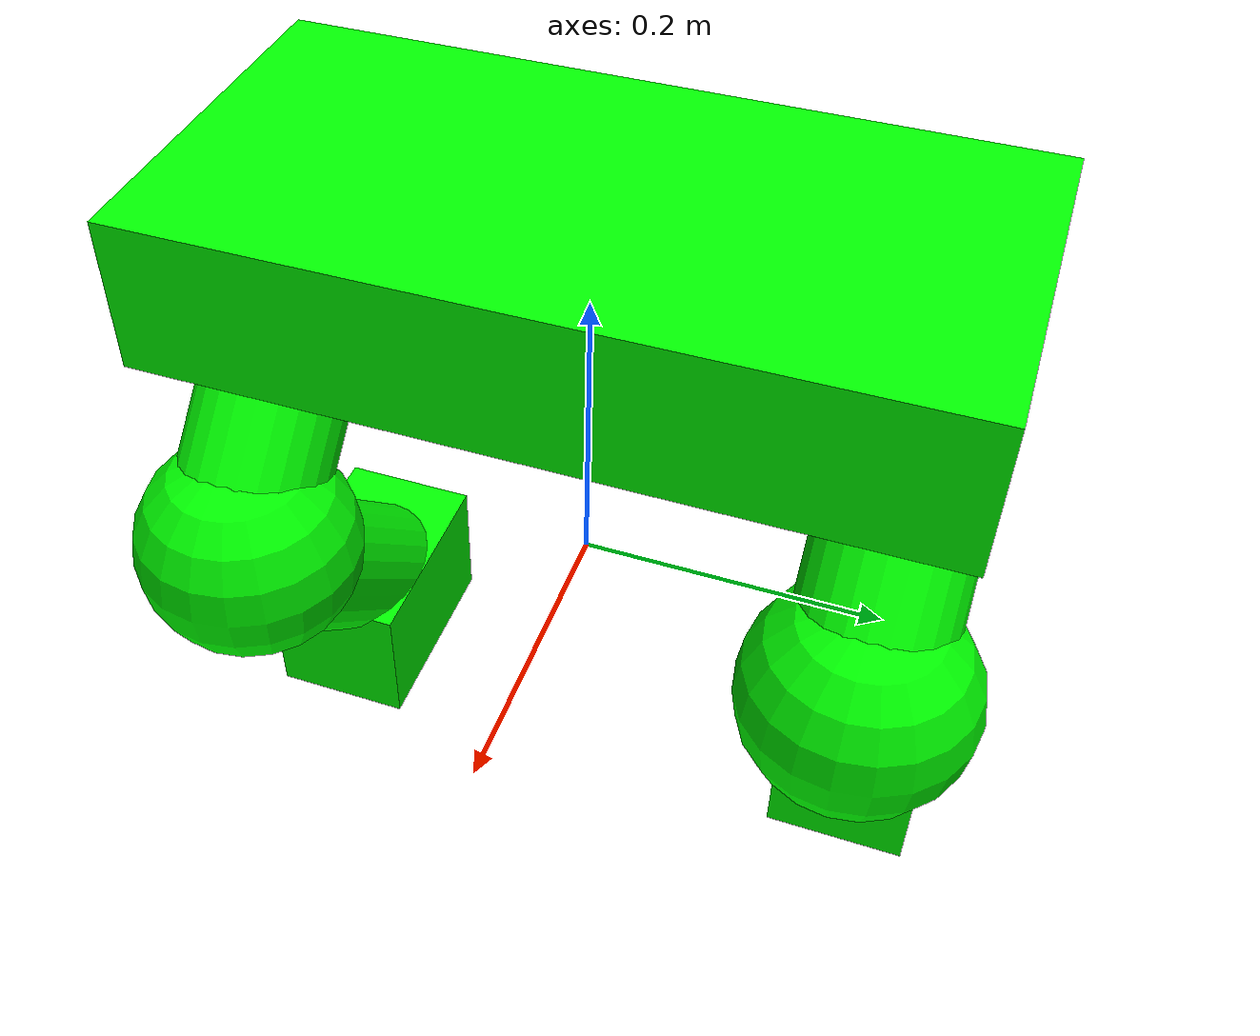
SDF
<?xml version='1.0'?>
<sdf version='1.6'>
  <model name='Humanoid_Robot'>
    <link name='link_0'>
      <pose frame=''>-0.01209 0 0.22008 0 -0 0</pose>
      <inertial>
        <mass>1</mass>
        <inertia>
          <ixx>0.166667</ixx>
          <ixy>0</ixy>
          <ixz>0</ixz>
          <iyy>0.166667</iyy>
          <iyz>0</iyz>
          <izz>0.166667</izz>
        </inertia>
        <pose frame=''>0 0 0 0 -0 0</pose>
      </inertial>
      <gravity>1</gravity>
      <self_collide>0</self_collide>
      <kinematic>0</kinematic>
      <visual name='visual'>
        <pose frame=''>0 0 0 0 -0 0</pose>
        <geometry>
          <box>
            <size>0.25 0.5 0.1</size>
          </box>
        </geometry>
        <material>
          <lighting>1</lighting>
          <script>
            <uri>file://media/materials/scripts/gazebo.material</uri>
            <name>Gazebo/Grey</name>
          </script>
          <shader type='pixel'>
            <normal_map>__default__</normal_map>
          </shader>
          <ambient>0.3 0.3 0.3 1</ambient>
          <diffuse>0 1 0 1</diffuse>
          <specular>0.01 0.01 0.01 1</specular>
          <emissive>0 0 0 1</emissive>
        </material>
        <transparency>0</transparency>
        <cast_shadows>1</cast_shadows>
      </visual>
      <collision name='collision'>
        <laser_retro>0</laser_retro>
        <max_contacts>10</max_contacts>
        <pose frame=''>0 0 0 0 -0 0</pose>
        <geometry>
          <box>
            <size>0.25 0.5 0.1</size>
          </box>
        </geometry>
        <surface>
          <friction>
            <ode>
              <mu>1</mu>
              <mu2>1</mu2>
              <fdir1>0 0 0</fdir1>
              <slip1>0</slip1>
              <slip2>0</slip2>
            </ode>
            <torsional>
              <coefficient>1</coefficient>
              <patch_radius>0</patch_radius>
              <surface_radius>0</surface_radius>
              <use_patch_radius>1</use_patch_radius>
              <ode>
                <slip>0</slip>
              </ode>
            </torsional>
          </friction>
          <bounce>
            <restitution_coefficient>0</restitution_coefficient>
            <threshold>1e+06</threshold>
          </bounce>
          <contact>
            <collide_without_contact>0</collide_without_contact>
            <collide_without_contact_bitmask>1</collide_without_contact_bitmask>
            <collide_bitmask>1</collide_bitmask>
            <ode>
              <soft_cfm>0</soft_cfm>
              <soft_erp>0.2</soft_erp>
              <kp>1e+13</kp>
              <kd>1</kd>
              <max_vel>0.01</max_vel>
              <min_depth>0</min_depth>
            </ode>
            <bullet>
              <split_impulse>1</split_impulse>
              <split_impulse_penetration_threshold>-0.01</split_impulse_penetration_threshold>
              <soft_cfm>0</soft_cfm>
              <soft_erp>0.2</soft_erp>
              <kp>1e+13</kp>
              <kd>1</kd>
            </bullet>
          </contact>
        </surface>
      </collision>
    </link>
    <link name='link_4'>
      <pose frame=''>-0.002743 -0.2 0.14508 0 -0.78535 0</pose>
      <inertial>
        <mass>1</mass>
        <inertia>
          <ixx>0.145833</ixx>
          <ixy>0</ixy>
          <ixz>0</ixz>
          <iyy>0.145833</iyy>
          <iyz>0</iyz>
          <izz>0.125</izz>
        </inertia>
        <pose frame=''>0 0 0 0 -0 0</pose>
      </inertial>
      <gravity>1</gravity>
      <self_collide>0</self_collide>
      <kinematic>0</kinematic>
      <visual name='visual'>
        <pose frame=''>0 0 0 0 -0 0</pose>
        <geometry>
          <cylinder>
            <radius>0.05</radius>
            <length>0.25</length>
          </cylinder>
        </geometry>
        <material>
          <lighting>1</lighting>
          <script>
            <uri>file://media/materials/scripts/gazebo.material</uri>
            <name>Gazebo/Grey</name>
          </script>
          <shader type='pixel'>
            <normal_map>__default__</normal_map>
          </shader>
          <ambient>0 1 0 1</ambient>
          <diffuse>0.7 0.7 0.7 1</diffuse>
          <specular>0.01 0.01 0.01 1</specular>
          <emissive>0 0 0 1</emissive>
        </material>
        <transparency>0</transparency>
        <cast_shadows>1</cast_shadows>
      </visual>
      <collision name='collision'>
        <laser_retro>0</laser_retro>
        <max_contacts>10</max_contacts>
        <pose frame=''>0 0 0 0 -0 0</pose>
        <geometry>
          <cylinder>
            <radius>0.05</radius>
            <length>0.25</length>
          </cylinder>
        </geometry>
        <surface>
          <friction>
            <ode>
              <mu>1</mu>
              <mu2>1</mu2>
              <fdir1>0 0 0</fdir1>
              <slip1>0</slip1>
              <slip2>0</slip2>
            </ode>
            <torsional>
              <coefficient>1</coefficient>
              <patch_radius>0</patch_radius>
              <surface_radius>0</surface_radius>
              <use_patch_radius>1</use_patch_radius>
              <ode>
                <slip>0</slip>
              </ode>
            </torsional>
          </friction>
          <bounce>
            <restitution_coefficient>0</restitution_coefficient>
            <threshold>1e+06</threshold>
          </bounce>
          <contact>
            <collide_without_contact>0</collide_without_contact>
            <collide_without_contact_bitmask>1</collide_without_contact_bitmask>
            <collide_bitmask>1</collide_bitmask>
            <ode>
              <soft_cfm>0</soft_cfm>
              <soft_erp>0.2</soft_erp>
              <kp>1e+13</kp>
              <kd>1</kd>
              <max_vel>0.01</max_vel>
              <min_depth>0</min_depth>
            </ode>
            <bullet>
              <split_impulse>1</split_impulse>
              <split_impulse_penetration_threshold>-0.01</split_impulse_penetration_threshold>
              <soft_cfm>0</soft_cfm>
              <soft_erp>0.2</soft_erp>
              <kp>1e+13</kp>
              <kd>1</kd>
            </bullet>
          </contact>
        </surface>
      </collision>
    </link>
    <link name='link_4_clone'>
      <pose frame=''>-0.013349 0.2 0.14508 0 -0.78535 0</pose>
      <inertial>
        <mass>1</mass>
        <inertia>
          <ixx>0.145833</ixx>
          <ixy>0</ixy>
          <ixz>0</ixz>
          <iyy>0.145833</iyy>
          <iyz>0</iyz>
          <izz>0.125</izz>
        </inertia>
        <pose frame=''>0 0 0 0 -0 0</pose>
      </inertial>
      <self_collide>0</self_collide>
      <kinematic>0</kinematic>
      <gravity>1</gravity>
      <visual name='visual'>
        <pose frame=''>0 0 0 0 -0 0</pose>
        <geometry>
          <cylinder>
            <radius>0.05</radius>
            <length>0.25</length>
          </cylinder>
        </geometry>
        <material>
          <lighting>1</lighting>
          <script>
            <uri>file://media/materials/scripts/gazebo.material</uri>
            <name>Gazebo/Grey</name>
          </script>
          <shader type='pixel'>
            <normal_map>__default__</normal_map>
          </shader>
          <ambient>0 1 0 1</ambient>
          <diffuse>0.7 0.7 0.7 1</diffuse>
          <specular>0.01 0.01 0.01 1</specular>
          <emissive>0 0 0 1</emissive>
        </material>
        <transparency>0</transparency>
        <cast_shadows>1</cast_shadows>
      </visual>
      <collision name='collision'>
        <laser_retro>0</laser_retro>
        <max_contacts>10</max_contacts>
        <pose frame=''>0 0 0 0 -0 0</pose>
        <geometry>
          <cylinder>
            <radius>0.05</radius>
            <length>0.25</length>
          </cylinder>
        </geometry>
        <surface>
          <friction>
            <ode>
              <mu>1</mu>
              <mu2>1</mu2>
              <fdir1>0 0 0</fdir1>
              <slip1>0</slip1>
              <slip2>0</slip2>
            </ode>
            <torsional>
              <coefficient>1</coefficient>
              <patch_radius>0</patch_radius>
              <surface_radius>0</surface_radius>
              <use_patch_radius>1</use_patch_radius>
              <ode>
                <slip>0</slip>
              </ode>
            </torsional>
          </friction>
          <bounce>
            <restitution_coefficient>0</restitution_coefficient>
            <threshold>1e+06</threshold>
          </bounce>
          <contact>
            <collide_without_contact>0</collide_without_contact>
            <collide_without_contact_bitmask>1</collide_without_contact_bitmask>
            <collide_bitmask>1</collide_bitmask>
            <ode>
              <soft_cfm>0</soft_cfm>
              <soft_erp>0.2</soft_erp>
              <kp>1e+13</kp>
              <kd>1</kd>
              <max_vel>0.01</max_vel>
              <min_depth>0</min_depth>
            </ode>
            <bullet>
              <split_impulse>1</split_impulse>
              <split_impulse_penetration_threshold>-0.01</split_impulse_penetration_threshold>
              <soft_cfm>0</soft_cfm>
              <soft_erp>0.2</soft_erp>
              <kp>1e+13</kp>
              <kd>1</kd>
            </bullet>
          </contact>
        </surface>
      </collision>
    </link>
    <link name='link_4_clone_0'>
      <pose frame=''>-0.013349 -0.2 -0.102413 0 0.78535 0</pose>
      <inertial>
        <mass>1</mass>
        <inertia>
          <ixx>0.145833</ixx>
          <ixy>0</ixy>
          <ixz>0</ixz>
          <iyy>0.145833</iyy>
          <iyz>0</iyz>
          <izz>0.125</izz>
        </inertia>
        <pose frame=''>0 0 0 0 -0 0</pose>
      </inertial>
      <self_collide>0</self_collide>
      <kinematic>0</kinematic>
      <gravity>1</gravity>
      <visual name='visual'>
        <pose frame=''>0 0 0 0 -0 0</pose>
        <geometry>
          <cylinder>
            <radius>0.05</radius>
            <length>0.25</length>
          </cylinder>
        </geometry>
        <material>
          <lighting>1</lighting>
          <script>
            <uri>file://media/materials/scripts/gazebo.material</uri>
            <name>Gazebo/Grey</name>
          </script>
          <shader type='pixel'>
            <normal_map>__default__</normal_map>
          </shader>
          <ambient>0 1 0 1</ambient>
          <diffuse>0.7 0.7 0.7 1</diffuse>
          <specular>0.01 0.01 0.01 1</specular>
          <emissive>0 0 0 1</emissive>
        </material>
        <transparency>0</transparency>
        <cast_shadows>1</cast_shadows>
      </visual>
      <collision name='collision'>
        <laser_retro>0</laser_retro>
        <max_contacts>10</max_contacts>
        <pose frame=''>0 0 0 0 -0 0</pose>
        <geometry>
          <cylinder>
            <radius>0.05</radius>
            <length>0.25</length>
          </cylinder>
        </geometry>
        <surface>
          <friction>
            <ode>
              <mu>1</mu>
              <mu2>1</mu2>
              <fdir1>0 0 0</fdir1>
              <slip1>0</slip1>
              <slip2>0</slip2>
            </ode>
            <torsional>
              <coefficient>1</coefficient>
              <patch_radius>0</patch_radius>
              <surface_radius>0</surface_radius>
              <use_patch_radius>1</use_patch_radius>
              <ode>
                <slip>0</slip>
              </ode>
            </torsional>
          </friction>
          <bounce>
            <restitution_coefficient>0</restitution_coefficient>
            <threshold>1e+06</threshold>
          </bounce>
          <contact>
            <collide_without_contact>0</collide_without_contact>
            <collide_without_contact_bitmask>1</collide_without_contact_bitmask>
            <collide_bitmask>1</collide_bitmask>
            <ode>
              <soft_cfm>0</soft_cfm>
              <soft_erp>0.2</soft_erp>
              <kp>1e+13</kp>
              <kd>1</kd>
              <max_vel>0.01</max_vel>
              <min_depth>0</min_depth>
            </ode>
            <bullet>
              <split_impulse>1</split_impulse>
              <split_impulse_penetration_threshold>-0.01</split_impulse_penetration_threshold>
              <soft_cfm>0</soft_cfm>
              <soft_erp>0.2</soft_erp>
              <kp>1e+13</kp>
              <kd>1</kd>
            </bullet>
          </contact>
        </surface>
      </collision>
    </link>
    <link name='link_4_clone_1'>
      <pose frame=''>-0.013349 0.2 -0.102413 0 0.78535 0</pose>
      <inertial>
        <mass>1</mass>
        <inertia>
          <ixx>0.145833</ixx>
          <ixy>0</ixy>
          <ixz>0</ixz>
          <iyy>0.145833</iyy>
          <iyz>0</iyz>
          <izz>0.125</izz>
        </inertia>
        <pose frame=''>0 0 0 0 -0 0</pose>
      </inertial>
      <self_collide>0</self_collide>
      <kinematic>0</kinematic>
      <gravity>1</gravity>
      <visual name='visual'>
        <pose frame=''>0 0 0 0 -0 0</pose>
        <geometry>
          <cylinder>
            <radius>0.05</radius>
            <length>0.25</length>
          </cylinder>
        </geometry>
        <material>
          <lighting>1</lighting>
          <script>
            <uri>file://media/materials/scripts/gazebo.material</uri>
            <name>Gazebo/Grey</name>
          </script>
          <shader type='pixel'>
            <normal_map>__default__</normal_map>
          </shader>
          <ambient>0 1 0 1</ambient>
          <diffuse>0.7 0.7 0.7 1</diffuse>
          <specular>0.01 0.01 0.01 1</specular>
          <emissive>0 0 0 1</emissive>
        </material>
        <transparency>0</transparency>
        <cast_shadows>1</cast_shadows>
      </visual>
      <collision name='collision'>
        <laser_retro>0</laser_retro>
        <max_contacts>10</max_contacts>
        <pose frame=''>0 0 0 0 -0 0</pose>
        <geometry>
          <cylinder>
            <radius>0.05</radius>
            <length>0.25</length>
          </cylinder>
        </geometry>
        <surface>
          <friction>
            <ode>
              <mu>1</mu>
              <mu2>1</mu2>
              <fdir1>0 0 0</fdir1>
              <slip1>0</slip1>
              <slip2>0</slip2>
            </ode>
            <torsional>
              <coefficient>1</coefficient>
              <patch_radius>0</patch_radius>
              <surface_radius>0</surface_radius>
              <use_patch_radius>1</use_patch_radius>
              <ode>
                <slip>0</slip>
              </ode>
            </torsional>
          </friction>
          <bounce>
            <restitution_coefficient>0</restitution_coefficient>
            <threshold>1e+06</threshold>
          </bounce>
          <contact>
            <collide_without_contact>0</collide_without_contact>
            <collide_without_contact_bitmask>1</collide_without_contact_bitmask>
            <collide_bitmask>1</collide_bitmask>
            <ode>
              <soft_cfm>0</soft_cfm>
              <soft_erp>0.2</soft_erp>
              <kp>1e+13</kp>
              <kd>1</kd>
              <max_vel>0.01</max_vel>
              <min_depth>0</min_depth>
            </ode>
            <bullet>
              <split_impulse>1</split_impulse>
              <split_impulse_penetration_threshold>-0.01</split_impulse_penetration_threshold>
              <soft_cfm>0</soft_cfm>
              <soft_erp>0.2</soft_erp>
              <kp>1e+13</kp>
              <kd>1</kd>
            </bullet>
          </contact>
        </surface>
      </collision>
    </link>
    <link name='link_5_clone'>
      <pose frame=''>0.094832 -0.2 0.023453 0 -0 0</pose>
      <inertial>
        <mass>1</mass>
        <inertia>
          <ixx>0.1</ixx>
          <ixy>0</ixy>
          <ixz>0</ixz>
          <iyy>0.1</iyy>
          <iyz>0</iyz>
          <izz>0.1</izz>
        </inertia>
        <pose frame=''>0 0 0 0 -0 0</pose>
      </inertial>
      <self_collide>0</self_collide>
      <kinematic>0</kinematic>
      <gravity>1</gravity>
      <visual name='visual'>
        <pose frame=''>0 0 0 0 -0 0</pose>
        <geometry>
          <sphere>
            <radius>0.075</radius>
          </sphere>
        </geometry>
        <material>
          <lighting>1</lighting>
          <script>
            <uri>file://media/materials/scripts/gazebo.material</uri>
            <name>Gazebo/Grey</name>
          </script>
          <shader type='pixel'>
            <normal_map>__default__</normal_map>
          </shader>
          <ambient>0 1 0 1</ambient>
          <diffuse>0.7 0.7 0.7 1</diffuse>
          <specular>0.01 0.01 0.01 1</specular>
          <emissive>0 0 0 1</emissive>
        </material>
        <transparency>0</transparency>
        <cast_shadows>1</cast_shadows>
      </visual>
      <collision name='collision'>
        <laser_retro>0</laser_retro>
        <max_contacts>10</max_contacts>
        <pose frame=''>0 0 0 0 -0 0</pose>
        <geometry>
          <sphere>
            <radius>0.075</radius>
          </sphere>
        </geometry>
        <surface>
          <friction>
            <ode>
              <mu>1</mu>
              <mu2>1</mu2>
              <fdir1>0 0 0</fdir1>
              <slip1>0</slip1>
              <slip2>0</slip2>
            </ode>
            <torsional>
              <coefficient>1</coefficient>
              <patch_radius>0</patch_radius>
              <surface_radius>0</surface_radius>
              <use_patch_radius>1</use_patch_radius>
              <ode>
                <slip>0</slip>
              </ode>
            </torsional>
          </friction>
          <bounce>
            <restitution_coefficient>0</restitution_coefficient>
            <threshold>1e+06</threshold>
          </bounce>
          <contact>
            <collide_without_contact>0</collide_without_contact>
            <collide_without_contact_bitmask>1</collide_without_contact_bitmask>
            <collide_bitmask>1</collide_bitmask>
            <ode>
              <soft_cfm>0</soft_cfm>
              <soft_erp>0.2</soft_erp>
              <kp>1e+13</kp>
              <kd>1</kd>
              <max_vel>0.01</max_vel>
              <min_depth>0</min_depth>
            </ode>
            <bullet>
              <split_impulse>1</split_impulse>
              <split_impulse_penetration_threshold>-0.01</split_impulse_penetration_threshold>
              <soft_cfm>0</soft_cfm>
              <soft_erp>0.2</soft_erp>
              <kp>1e+13</kp>
              <kd>1</kd>
            </bullet>
          </contact>
        </surface>
      </collision>
    </link>
    <link name='link_5_clone_clone'>
      <pose frame=''>0.084226 0.2 0.023453 0 -0 0</pose>
      <inertial>
        <mass>1</mass>
        <inertia>
          <ixx>0.1</ixx>
          <ixy>0</ixy>
          <ixz>0</ixz>
          <iyy>0.1</iyy>
          <iyz>0</iyz>
          <izz>0.1</izz>
        </inertia>
        <pose frame=''>0 0 0 0 -0 0</pose>
      </inertial>
      <self_collide>0</self_collide>
      <kinematic>0</kinematic>
      <visual name='visual'>
        <pose frame=''>0 0 0 0 -0 0</pose>
        <geometry>
          <sphere>
            <radius>0.075</radius>
          </sphere>
        </geometry>
        <material>
          <lighting>1</lighting>
          <script>
            <uri>file://media/materials/scripts/gazebo.material</uri>
            <name>Gazebo/Grey</name>
          </script>
          <shader type='pixel'>
            <normal_map>__default__</normal_map>
          </shader>
          <ambient>0 1 0 1</ambient>
          <diffuse>0.7 0.7 0.7 1</diffuse>
          <specular>0.01 0.01 0.01 1</specular>
          <emissive>0 0 0 1</emissive>
        </material>
        <transparency>0</transparency>
        <cast_shadows>1</cast_shadows>
      </visual>
      <collision name='collision'>
        <laser_retro>0</laser_retro>
        <max_contacts>10</max_contacts>
        <pose frame=''>0 0 0 0 -0 0</pose>
        <geometry>
          <sphere>
            <radius>0.075</radius>
          </sphere>
        </geometry>
        <surface>
          <friction>
            <ode>
              <mu>1</mu>
              <mu2>1</mu2>
              <fdir1>0 0 0</fdir1>
              <slip1>0</slip1>
              <slip2>0</slip2>
            </ode>
            <torsional>
              <coefficient>1</coefficient>
              <patch_radius>0</patch_radius>
              <surface_radius>0</surface_radius>
              <use_patch_radius>1</use_patch_radius>
              <ode>
                <slip>0</slip>
              </ode>
            </torsional>
          </friction>
          <bounce>
            <restitution_coefficient>0</restitution_coefficient>
            <threshold>1e+06</threshold>
          </bounce>
          <contact>
            <collide_without_contact>0</collide_without_contact>
            <collide_without_contact_bitmask>1</collide_without_contact_bitmask>
            <collide_bitmask>1</collide_bitmask>
            <ode>
              <soft_cfm>0</soft_cfm>
              <soft_erp>0.2</soft_erp>
              <kp>1e+13</kp>
              <kd>1</kd>
              <max_vel>0.01</max_vel>
              <min_depth>0</min_depth>
            </ode>
            <bullet>
              <split_impulse>1</split_impulse>
              <split_impulse_penetration_threshold>-0.01</split_impulse_penetration_threshold>
              <soft_cfm>0</soft_cfm>
              <soft_erp>0.2</soft_erp>
              <kp>1e+13</kp>
              <kd>1</kd>
            </bullet>
          </contact>
        </surface>
      </collision>
    </link>
    <link name='link_6'>
      <pose frame=''>-0.06209 -0.2 -0.176159 0 -0 0</pose>
      <inertial>
        <mass>1</mass>
        <inertia>
          <ixx>0.166667</ixx>
          <ixy>0</ixy>
          <ixz>0</ixz>
          <iyy>0.166667</iyy>
          <iyz>0</iyz>
          <izz>0.166667</izz>
        </inertia>
        <pose frame=''>0 0 0 0 -0 0</pose>
      </inertial>
      <gravity>1</gravity>
      <self_collide>0</self_collide>
      <kinematic>0</kinematic>
      <visual name='visual'>
        <pose frame=''>0 0 0 0 -0 0</pose>
        <geometry>
          <box>
            <size>0.15 0.1 0.1</size>
          </box>
        </geometry>
        <material>
          <lighting>1</lighting>
          <script>
            <uri>file://media/materials/scripts/gazebo.material</uri>
            <name>Gazebo/Grey</name>
          </script>
          <shader type='pixel'>
            <normal_map>__default__</normal_map>
          </shader>
          <ambient>0 1 0 1</ambient>
          <diffuse>0.7 0.7 0.7 1</diffuse>
          <specular>0.01 0.01 0.01 1</specular>
          <emissive>0 0 0 1</emissive>
        </material>
        <transparency>0</transparency>
        <cast_shadows>1</cast_shadows>
      </visual>
      <collision name='collision'>
        <laser_retro>0</laser_retro>
        <max_contacts>10</max_contacts>
        <pose frame=''>0 0 0 0 -0 0</pose>
        <geometry>
          <box>
            <size>0.1 0.1 0.1</size>
          </box>
        </geometry>
        <surface>
          <friction>
            <ode>
              <mu>1</mu>
              <mu2>1</mu2>
              <fdir1>0 0 0</fdir1>
              <slip1>0</slip1>
              <slip2>0</slip2>
            </ode>
            <torsional>
              <coefficient>1</coefficient>
              <patch_radius>0</patch_radius>
              <surface_radius>0</surface_radius>
              <use_patch_radius>1</use_patch_radius>
              <ode>
                <slip>0</slip>
              </ode>
            </torsional>
          </friction>
          <bounce>
            <restitution_coefficient>0</restitution_coefficient>
            <threshold>1e+06</threshold>
          </bounce>
          <contact>
            <collide_without_contact>0</collide_without_contact>
            <collide_without_contact_bitmask>1</collide_without_contact_bitmask>
            <collide_bitmask>1</collide_bitmask>
            <ode>
              <soft_cfm>0</soft_cfm>
              <soft_erp>0.2</soft_erp>
              <kp>1e+13</kp>
              <kd>1</kd>
              <max_vel>0.01</max_vel>
              <min_depth>0</min_depth>
            </ode>
            <bullet>
              <split_impulse>1</split_impulse>
              <split_impulse_penetration_threshold>-0.01</split_impulse_penetration_threshold>
              <soft_cfm>0</soft_cfm>
              <soft_erp>0.2</soft_erp>
              <kp>1e+13</kp>
              <kd>1</kd>
            </bullet>
          </contact>
        </surface>
      </collision>
    </link>
    <link name='link_6_clone'>
      <pose frame=''>-0.06209 0.2 -0.176159 0 -0 0</pose>
      <inertial>
        <mass>1</mass>
        <inertia>
          <ixx>0.166667</ixx>
          <ixy>0</ixy>
          <ixz>0</ixz>
          <iyy>0.166667</iyy>
          <iyz>0</iyz>
          <izz>0.166667</izz>
        </inertia>
        <pose frame=''>0 0 0 0 -0 0</pose>
      </inertial>
      <self_collide>0</self_collide>
      <kinematic>0</kinematic>
      <visual name='visual'>
        <pose frame=''>0 0 0 0 -0 0</pose>
        <geometry>
          <box>
            <size>0.15 0.1 0.1</size>
          </box>
        </geometry>
        <material>
          <lighting>1</lighting>
          <script>
            <uri>file://media/materials/scripts/gazebo.material</uri>
            <name>Gazebo/Grey</name>
          </script>
          <shader type='pixel'>
            <normal_map>__default__</normal_map>
          </shader>
          <ambient>0 1 0 1</ambient>
          <diffuse>0.7 0.7 0.7 1</diffuse>
          <specular>0.01 0.01 0.01 1</specular>
          <emissive>0 0 0 1</emissive>
        </material>
        <transparency>0</transparency>
        <cast_shadows>1</cast_shadows>
      </visual>
      <collision name='collision'>
        <laser_retro>0</laser_retro>
        <max_contacts>10</max_contacts>
        <pose frame=''>0 0 0 0 -0 0</pose>
        <geometry>
          <box>
            <size>0.1 0.1 0.1</size>
          </box>
        </geometry>
        <surface>
          <friction>
            <ode>
              <mu>1</mu>
              <mu2>1</mu2>
              <fdir1>0 0 0</fdir1>
              <slip1>0</slip1>
              <slip2>0</slip2>
            </ode>
            <torsional>
              <coefficient>1</coefficient>
              <patch_radius>0</patch_radius>
              <surface_radius>0</surface_radius>
              <use_patch_radius>1</use_patch_radius>
              <ode>
                <slip>0</slip>
              </ode>
            </torsional>
          </friction>
          <bounce>
            <restitution_coefficient>0</restitution_coefficient>
            <threshold>1e+06</threshold>
          </bounce>
          <contact>
            <collide_without_contact>0</collide_without_contact>
            <collide_without_contact_bitmask>1</collide_without_contact_bitmask>
            <collide_bitmask>1</collide_bitmask>
            <ode>
              <soft_cfm>0</soft_cfm>
              <soft_erp>0.2</soft_erp>
              <kp>1e+13</kp>
              <kd>1</kd>
              <max_vel>0.01</max_vel>
              <min_depth>0</min_depth>
            </ode>
            <bullet>
              <split_impulse>1</split_impulse>
              <split_impulse_penetration_threshold>-0.01</split_impulse_penetration_threshold>
              <soft_cfm>0</soft_cfm>
              <soft_erp>0.2</soft_erp>
              <kp>1e+13</kp>
              <kd>1</kd>
            </bullet>
          </contact>
        </surface>
      </collision>
    </link>
    <joint name='link_0_JOINT_0' type='revolute'>
      <parent>link_0</parent>
      <child>link_4</child>
      <pose frame=''>0 0 0 0 -0 0</pose>
      <axis>
        <xyz>1 0 0</xyz>
        <use_parent_model_frame>0</use_parent_model_frame>
        <limit>
          <lower>-1.79769e+308</lower>
          <upper>1.79769e+308</upper>
          <effort>-1</effort>
          <velocity>-1</velocity>
        </limit>
        <dynamics>
          <spring_reference>0</spring_reference>
          <spring_stiffness>0</spring_stiffness>
          <damping>0</damping>
        </dynamics>
      </axis>
      <physics>
        <ode>
          <limit>
            <cfm>0</cfm>
            <erp>0.2</erp>
          </limit>
          <suspension>
            <cfm>0</cfm>
            <erp>0.2</erp>
          </suspension>
        </ode>
      </physics>
    </joint>
    <joint name='link_0_JOINT_1' type='revolute'>
      <parent>link_0</parent>
      <child>link_4_clone</child>
      <pose frame=''>0 0 0 0 -0 0</pose>
      <axis>
        <xyz>1 0 0</xyz>
        <use_parent_model_frame>0</use_parent_model_frame>
        <limit>
          <lower>-1.79769e+308</lower>
          <upper>1.79769e+308</upper>
          <effort>-1</effort>
          <velocity>-1</velocity>
        </limit>
        <dynamics>
          <spring_reference>0</spring_reference>
          <spring_stiffness>0</spring_stiffness>
          <damping>0</damping>
        </dynamics>
      </axis>
      <physics>
        <ode>
          <limit>
            <cfm>0</cfm>
            <erp>0.2</erp>
          </limit>
          <suspension>
            <cfm>0</cfm>
            <erp>0.2</erp>
          </suspension>
        </ode>
      </physics>
    </joint>
    <joint name='link_4_JOINT_2' type='revolute'>
      <parent>link_4</parent>
      <child>link_4_clone_0</child>
      <pose frame=''>0 0 0 0 -0 0</pose>
      <axis>
        <xyz>1 0 0</xyz>
        <use_parent_model_frame>0</use_parent_model_frame>
        <limit>
          <lower>-1.79769e+308</lower>
          <upper>1.79769e+308</upper>
          <effort>-1</effort>
          <velocity>-1</velocity>
        </limit>
        <dynamics>
          <spring_reference>0</spring_reference>
          <spring_stiffness>0</spring_stiffness>
          <damping>0</damping>
        </dynamics>
      </axis>
      <physics>
        <ode>
          <limit>
            <cfm>0</cfm>
            <erp>0.2</erp>
          </limit>
          <suspension>
            <cfm>0</cfm>
            <erp>0.2</erp>
          </suspension>
        </ode>
      </physics>
    </joint>
    <joint name='link_4_JOINT_5' type='fixed'>
      <parent>link_4</parent>
      <child>link_5_clone</child>
      <pose frame=''>0 0 0 0 -0 0</pose>
      <physics>
        <ode>
          <limit>
            <cfm>0</cfm>
            <erp>0.2</erp>
          </limit>
          <suspension>
            <cfm>0</cfm>
            <erp>0.2</erp>
          </suspension>
        </ode>
      </physics>
    </joint>
    <joint name='link_4_clone_0_JOINT_9' type='revolute'>
      <parent>link_4_clone_0</parent>
      <child>link_6</child>
      <pose frame=''>0 0 0 0 -0 0</pose>
      <axis>
        <xyz>1 0 0</xyz>
        <use_parent_model_frame>0</use_parent_model_frame>
        <limit>
          <lower>-1.79769e+308</lower>
          <upper>1.79769e+308</upper>
          <effort>-1</effort>
          <velocity>-1</velocity>
        </limit>
        <dynamics>
          <spring_reference>0</spring_reference>
          <spring_stiffness>0</spring_stiffness>
          <damping>0</damping>
        </dynamics>
      </axis>
      <physics>
        <ode>
          <limit>
            <cfm>0</cfm>
            <erp>0.2</erp>
          </limit>
          <suspension>
            <cfm>0</cfm>
            <erp>0.2</erp>
          </suspension>
        </ode>
      </physics>
    </joint>
    <joint name='link_4_clone_1_JOINT_8' type='revolute'>
      <parent>link_4_clone_1</parent>
      <child>link_6_clone</child>
      <pose frame=''>0 0 0 0 -0 0</pose>
      <axis>
        <xyz>1 0 0</xyz>
        <use_parent_model_frame>0</use_parent_model_frame>
        <limit>
          <lower>-1.79769e+308</lower>
          <upper>1.79769e+308</upper>
          <effort>-1</effort>
          <velocity>-1</velocity>
        </limit>
        <dynamics>
          <spring_reference>0</spring_reference>
          <spring_stiffness>0</spring_stiffness>
          <damping>0</damping>
        </dynamics>
      </axis>
      <physics>
        <ode>
          <limit>
            <cfm>0</cfm>
            <erp>0.2</erp>
          </limit>
          <suspension>
            <cfm>0</cfm>
            <erp>0.2</erp>
          </suspension>
        </ode>
      </physics>
    </joint>
    <joint name='link_4_clone_JOINT_3' type='revolute'>
      <parent>link_4_clone</parent>
      <child>link_4_clone_1</child>
      <pose frame=''>0 0 0 0 -0 0</pose>
      <axis>
        <xyz>1 0 0</xyz>
        <use_parent_model_frame>0</use_parent_model_frame>
        <limit>
          <lower>-1.79769e+308</lower>
          <upper>1.79769e+308</upper>
          <effort>-1</effort>
          <velocity>-1</velocity>
        </limit>
        <dynamics>
          <spring_reference>0</spring_reference>
          <spring_stiffness>0</spring_stiffness>
          <damping>0</damping>
        </dynamics>
      </axis>
      <physics>
        <ode>
          <limit>
            <cfm>0</cfm>
            <erp>0.2</erp>
          </limit>
          <suspension>
            <cfm>0</cfm>
            <erp>0.2</erp>
          </suspension>
        </ode>
      </physics>
    </joint>
    <joint name='link_4_clone_JOINT_7' type='fixed'>
      <parent>link_4_clone</parent>
      <child>link_5_clone_clone</child>
      <pose frame=''>0 0 0 0 -0 0</pose>
      <physics>
        <ode>
          <limit>
            <cfm>0</cfm>
            <erp>0.2</erp>
          </limit>
          <suspension>
            <cfm>0</cfm>
            <erp>0.2</erp>
          </suspension>
        </ode>
      </physics>
    </joint>
    <static>0</static>
    <allow_auto_disable>1</allow_auto_disable>
  </model>
</sdf>
